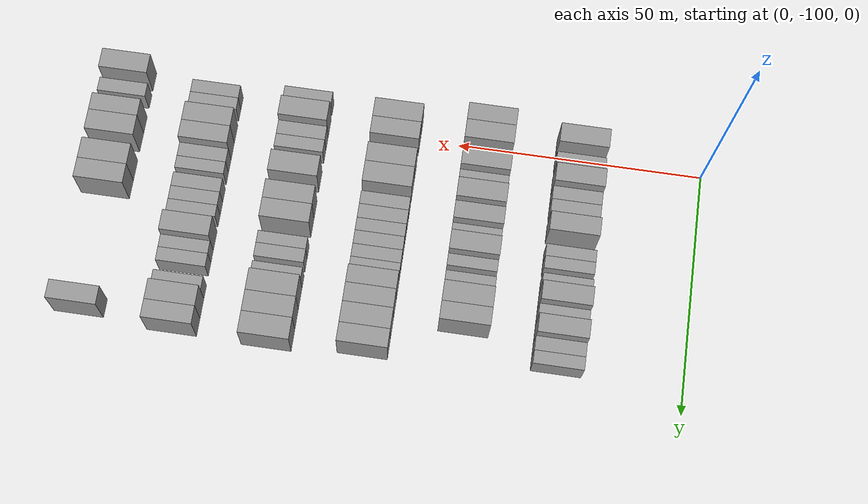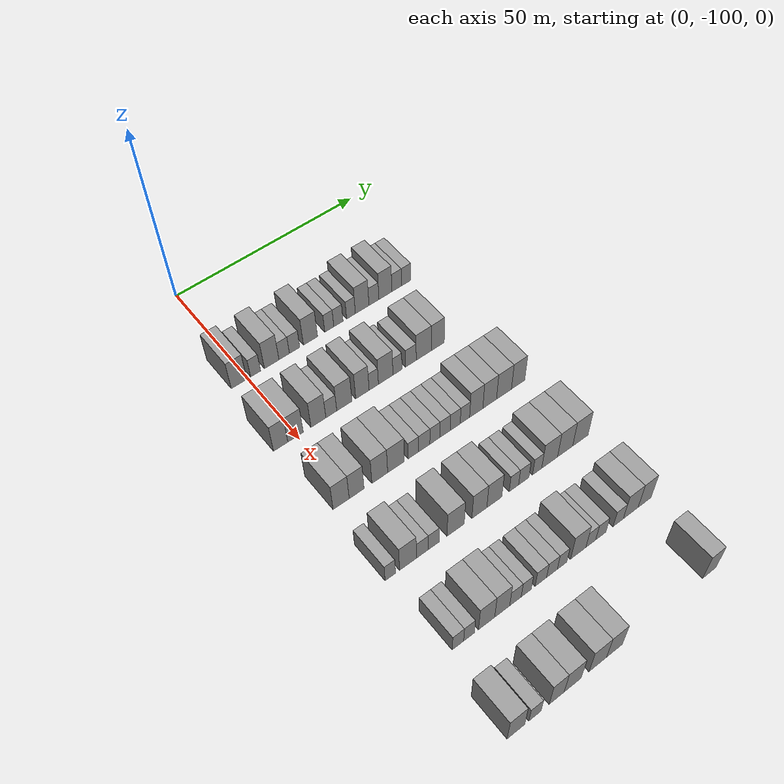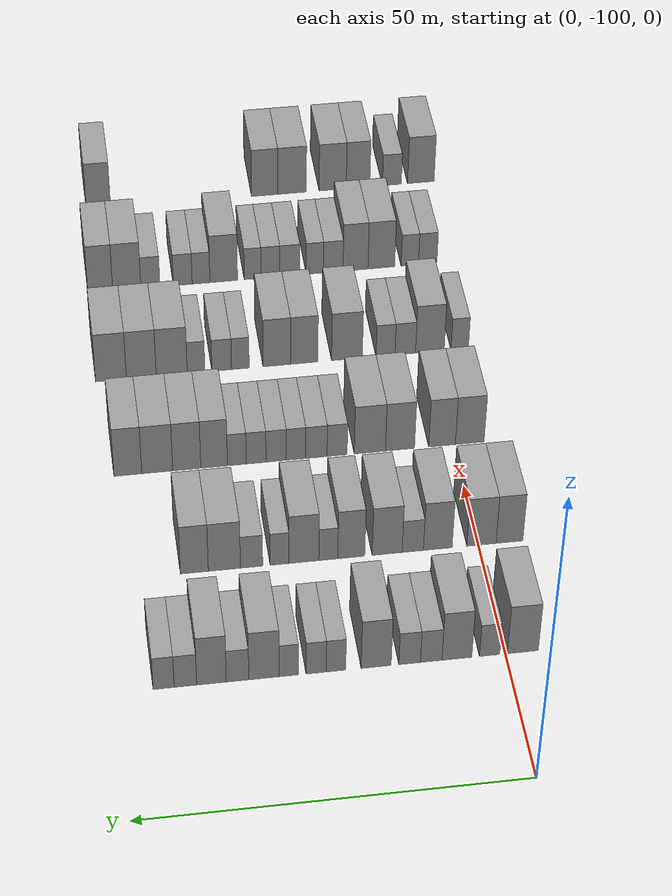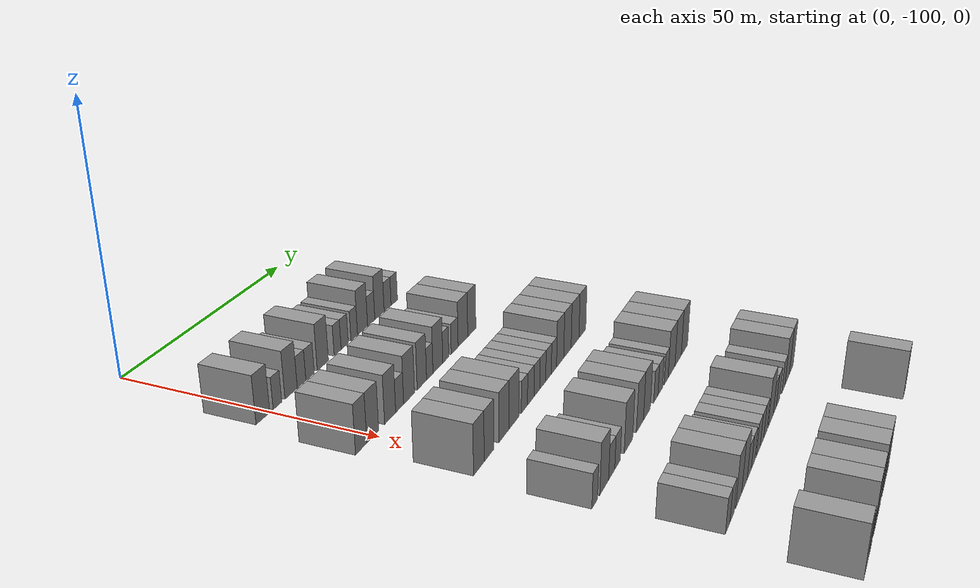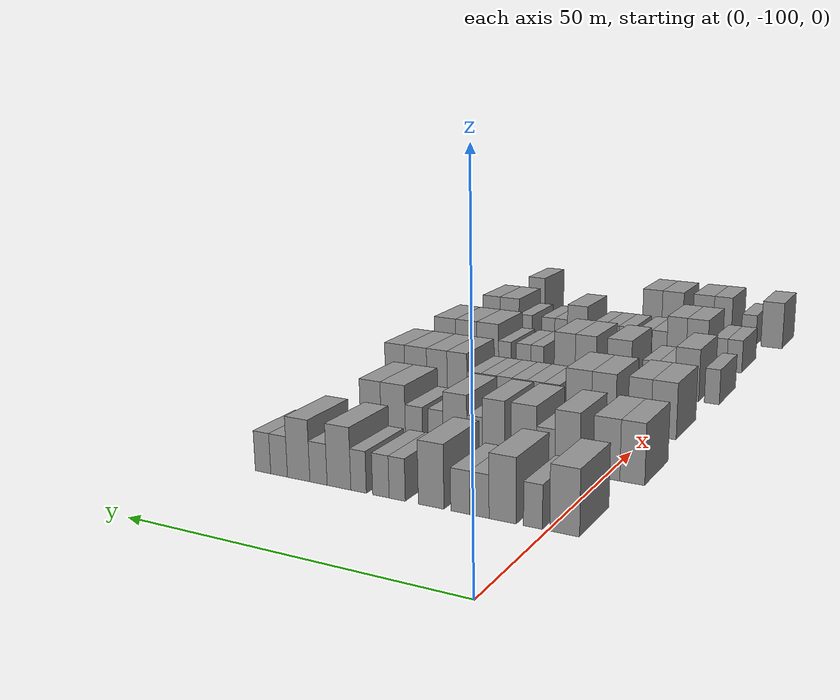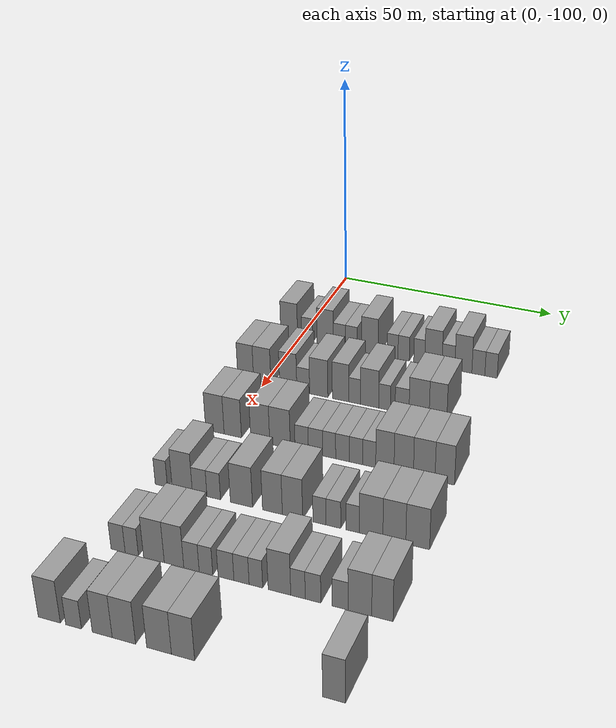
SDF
<sdf version="1.6">
 <world name="default">
  <model name="building_62">
   <static>1</static>
   <pose>25.0000 -102.2324 0 0.000000 0.000000 0.000000</pose>
   <link name="link">
    <pose>0 0 4.50 0 0 0</pose>
    <collision name="collision"><geometry><box><size>10.0000 4.0327 9.0000</size></box></geometry></collision>
    <visual name="visual">
     <cast_shadows>0</cast_shadows>
     <geometry><box><size>10.0000 4.0327 9.0000</size></box></geometry>
     <material>
      <script>
       <uri>model://grey_wall/materials/scripts</uri>
       <uri>model://grey_wall/materials/textures</uri>
       <name>vrc/grey_wall</name>
      </script>
     </material>
    </visual>
   </link>
  </model>
  <model name="building_63">
   <static>1</static>
   <pose>25.0000 -97.9014 0 0.000000 0.000000 0.000000</pose>
   <link name="link">
    <pose>0 0 3.00 0 0 0</pose>
    <collision name="collision"><geometry><box><size>10.0000 2.6293 6.0000</size></box></geometry></collision>
    <visual name="visual">
     <cast_shadows>0</cast_shadows>
     <geometry><box><size>10.0000 2.6293 6.0000</size></box></geometry>
     <material>
      <script>
       <uri>model://grey_wall/materials/scripts</uri>
       <uri>model://grey_wall/materials/textures</uri>
       <name>vrc/grey_wall</name>
      </script>
     </material>
    </visual>
   </link>
  </model>
  <model name="building_64">
   <static>1</static>
   <pose>25.0000 -93.6507 0 0.000000 0.000000 0.000000</pose>
   <link name="link">
    <pose>0 0 4.50 0 0 0</pose>
    <collision name="collision"><geometry><box><size>10.0000 3.8720 9.0000</size></box></geometry></collision>
    <visual name="visual">
     <cast_shadows>0</cast_shadows>
     <geometry><box><size>10.0000 3.8720 9.0000</size></box></geometry>
     <material>
      <script>
       <uri>model://grey_wall/materials/scripts</uri>
       <uri>model://grey_wall/materials/textures</uri>
       <name>vrc/grey_wall</name>
      </script>
     </material>
    </visual>
   </link>
  </model>
  <model name="building_65">
   <static>1</static>
   <pose>25.0000 -90.3148 0 0.000000 0.000000 0.000000</pose>
   <link name="link">
    <pose>0 0 3.00 0 0 0</pose>
    <collision name="collision"><geometry><box><size>10.0000 2.7999 6.0000</size></box></geometry></collision>
    <visual name="visual">
     <cast_shadows>0</cast_shadows>
     <geometry><box><size>10.0000 2.7999 6.0000</size></box></geometry>
     <material>
      <script>
       <uri>model://grey_wall/materials/scripts</uri>
       <uri>model://grey_wall/materials/textures</uri>
       <name>vrc/grey_wall</name>
      </script>
     </material>
    </visual>
   </link>
  </model>
  <model name="building_66">
   <static>1</static>
   <pose>25.0000 -87.5219 0 0.000000 0.000000 0.000000</pose>
   <link name="link">
    <pose>0 0 3.00 0 0 0</pose>
    <collision name="collision"><geometry><box><size>10.0000 2.7858 6.0000</size></box></geometry></collision>
    <visual name="visual">
     <cast_shadows>0</cast_shadows>
     <geometry><box><size>10.0000 2.7858 6.0000</size></box></geometry>
     <material>
      <script>
       <uri>model://grey_wall/materials/scripts</uri>
       <uri>model://grey_wall/materials/textures</uri>
       <name>vrc/grey_wall</name>
      </script>
     </material>
    </visual>
   </link>
  </model>
  <model name="building_67">
   <static>1</static>
   <pose>25.0000 -83.1992 0 0.000000 0.000000 0.000000</pose>
   <link name="link">
    <pose>0 0 4.50 0 0 0</pose>
    <collision name="collision"><geometry><box><size>10.0000 3.8596 9.0000</size></box></geometry></collision>
    <visual name="visual">
     <cast_shadows>0</cast_shadows>
     <geometry><box><size>10.0000 3.8596 9.0000</size></box></geometry>
     <material>
      <script>
       <uri>model://grey_wall/materials/scripts</uri>
       <uri>model://grey_wall/materials/textures</uri>
       <name>vrc/grey_wall</name>
      </script>
     </material>
    </visual>
   </link>
  </model>
  <model name="building_68">
   <static>1</static>
   <pose>25.0000 -78.0165 0 0.000000 0.000000 0.000000</pose>
   <link name="link">
    <pose>0 0 3.00 0 0 0</pose>
    <collision name="collision"><geometry><box><size>10.0000 2.5059 6.0000</size></box></geometry></collision>
    <visual name="visual">
     <cast_shadows>0</cast_shadows>
     <geometry><box><size>10.0000 2.5059 6.0000</size></box></geometry>
     <material>
      <script>
       <uri>model://grey_wall/materials/scripts</uri>
       <uri>model://grey_wall/materials/textures</uri>
       <name>vrc/grey_wall</name>
      </script>
     </material>
    </visual>
   </link>
  </model>
  <model name="building_69">
   <static>1</static>
   <pose>25.0000 -75.4700 0 0.000000 0.000000 0.000000</pose>
   <link name="link">
    <pose>0 0 3.00 0 0 0</pose>
    <collision name="collision"><geometry><box><size>10.0000 2.5871 6.0000</size></box></geometry></collision>
    <visual name="visual">
     <cast_shadows>0</cast_shadows>
     <geometry><box><size>10.0000 2.5871 6.0000</size></box></geometry>
     <material>
      <script>
       <uri>model://grey_wall/materials/scripts</uri>
       <uri>model://grey_wall/materials/textures</uri>
       <name>vrc/grey_wall</name>
      </script>
     </material>
    </visual>
   </link>
  </model>
  <model name="building_70">
   <static>1</static>
   <pose>25.0000 -71.9398 0 0.000000 0.000000 0.000000</pose>
   <link name="link">
    <pose>0 0 3.00 0 0 0</pose>
    <collision name="collision"><geometry><box><size>10.0000 2.4733 6.0000</size></box></geometry></collision>
    <visual name="visual">
     <cast_shadows>0</cast_shadows>
     <geometry><box><size>10.0000 2.4733 6.0000</size></box></geometry>
     <material>
      <script>
       <uri>model://grey_wall/materials/scripts</uri>
       <uri>model://grey_wall/materials/textures</uri>
       <name>vrc/grey_wall</name>
      </script>
     </material>
    </visual>
   </link>
  </model>
  <model name="building_71">
   <static>1</static>
   <pose>25.0000 -68.7679 0 0.000000 0.000000 0.000000</pose>
   <link name="link">
    <pose>0 0 4.50 0 0 0</pose>
    <collision name="collision"><geometry><box><size>10.0000 3.8706 9.0000</size></box></geometry></collision>
    <visual name="visual">
     <cast_shadows>0</cast_shadows>
     <geometry><box><size>10.0000 3.8706 9.0000</size></box></geometry>
     <material>
      <script>
       <uri>model://grey_wall/materials/scripts</uri>
       <uri>model://grey_wall/materials/textures</uri>
       <name>vrc/grey_wall</name>
      </script>
     </material>
    </visual>
   </link>
  </model>
  <model name="building_72">
   <static>1</static>
   <pose>25.0000 -65.4041 0 0.000000 0.000000 0.000000</pose>
   <link name="link">
    <pose>0 0 3.00 0 0 0</pose>
    <collision name="collision"><geometry><box><size>10.0000 2.8571 6.0000</size></box></geometry></collision>
    <visual name="visual">
     <cast_shadows>0</cast_shadows>
     <geometry><box><size>10.0000 2.8571 6.0000</size></box></geometry>
     <material>
      <script>
       <uri>model://grey_wall/materials/scripts</uri>
       <uri>model://grey_wall/materials/textures</uri>
       <name>vrc/grey_wall</name>
      </script>
     </material>
    </visual>
   </link>
  </model>
  <model name="building_73">
   <static>1</static>
   <pose>25.0000 -62.0879 0 0.000000 0.000000 0.000000</pose>
   <link name="link">
    <pose>0 0 4.50 0 0 0</pose>
    <collision name="collision"><geometry><box><size>10.0000 3.7752 9.0000</size></box></geometry></collision>
    <visual name="visual">
     <cast_shadows>0</cast_shadows>
     <geometry><box><size>10.0000 3.7752 9.0000</size></box></geometry>
     <material>
      <script>
       <uri>model://grey_wall/materials/scripts</uri>
       <uri>model://grey_wall/materials/textures</uri>
       <name>vrc/grey_wall</name>
      </script>
     </material>
    </visual>
   </link>
  </model>
  <model name="building_74">
   <static>1</static>
   <pose>25.0000 -58.7655 0 0.000000 0.000000 0.000000</pose>
   <link name="link">
    <pose>0 0 3.00 0 0 0</pose>
    <collision name="collision"><geometry><box><size>10.0000 2.8698 6.0000</size></box></geometry></collision>
    <visual name="visual">
     <cast_shadows>0</cast_shadows>
     <geometry><box><size>10.0000 2.8698 6.0000</size></box></geometry>
     <material>
      <script>
       <uri>model://grey_wall/materials/scripts</uri>
       <uri>model://grey_wall/materials/textures</uri>
       <name>vrc/grey_wall</name>
      </script>
     </material>
    </visual>
   </link>
  </model>
  <model name="building_75">
   <static>1</static>
   <pose>25.0000 -55.9887 0 0.000000 0.000000 0.000000</pose>
   <link name="link">
    <pose>0 0 3.00 0 0 0</pose>
    <collision name="collision"><geometry><box><size>10.0000 2.6839 6.0000</size></box></geometry></collision>
    <visual name="visual">
     <cast_shadows>0</cast_shadows>
     <geometry><box><size>10.0000 2.6839 6.0000</size></box></geometry>
     <material>
      <script>
       <uri>model://grey_wall/materials/scripts</uri>
       <uri>model://grey_wall/materials/textures</uri>
       <name>vrc/grey_wall</name>
      </script>
     </material>
    </visual>
   </link>
  </model>
  <model name="building_237">
   <static>1</static>
   <pose>44.0000 -104.1863 0 0.000000 0.000000 0.000000</pose>
   <link name="link">
    <pose>0 0 4.50 0 0 0</pose>
    <collision name="collision"><geometry><box><size>10.0000 3.6390 9.0000</size></box></geometry></collision>
    <visual name="visual">
     <cast_shadows>0</cast_shadows>
     <geometry><box><size>10.0000 3.6390 9.0000</size></box></geometry>
     <material>
      <script>
       <uri>model://grey_wall/materials/scripts</uri>
       <uri>model://grey_wall/materials/textures</uri>
       <name>vrc/grey_wall</name>
      </script>
     </material>
    </visual>
   </link>
  </model>
  <model name="building_238">
   <static>1</static>
   <pose>44.0000 -100.3895 0 0.000000 0.000000 0.000000</pose>
   <link name="link">
    <pose>0 0 4.50 0 0 0</pose>
    <collision name="collision"><geometry><box><size>10.0000 3.9548 9.0000</size></box></geometry></collision>
    <visual name="visual">
     <cast_shadows>0</cast_shadows>
     <geometry><box><size>10.0000 3.9548 9.0000</size></box></geometry>
     <material>
      <script>
       <uri>model://grey_wall/materials/scripts</uri>
       <uri>model://grey_wall/materials/textures</uri>
       <name>vrc/grey_wall</name>
      </script>
     </material>
    </visual>
   </link>
  </model>
  <model name="building_239">
   <static>1</static>
   <pose>44.0000 -94.4741 0 0.000000 0.000000 0.000000</pose>
   <link name="link">
    <pose>0 0 4.50 0 0 0</pose>
    <collision name="collision"><geometry><box><size>10.0000 3.8760 9.0000</size></box></geometry></collision>
    <visual name="visual">
     <cast_shadows>0</cast_shadows>
     <geometry><box><size>10.0000 3.8760 9.0000</size></box></geometry>
     <material>
      <script>
       <uri>model://grey_wall/materials/scripts</uri>
       <uri>model://grey_wall/materials/textures</uri>
       <name>vrc/grey_wall</name>
      </script>
     </material>
    </visual>
   </link>
  </model>
  <model name="building_240">
   <static>1</static>
   <pose>44.0000 -91.0992 0 0.000000 0.000000 0.000000</pose>
   <link name="link">
    <pose>0 0 3.00 0 0 0</pose>
    <collision name="collision"><geometry><box><size>10.0000 2.8737 6.0000</size></box></geometry></collision>
    <visual name="visual">
     <cast_shadows>0</cast_shadows>
     <geometry><box><size>10.0000 2.8737 6.0000</size></box></geometry>
     <material>
      <script>
       <uri>model://grey_wall/materials/scripts</uri>
       <uri>model://grey_wall/materials/textures</uri>
       <name>vrc/grey_wall</name>
      </script>
     </material>
    </visual>
   </link>
  </model>
  <model name="building_241">
   <static>1</static>
   <pose>44.0000 -87.6434 0 0.000000 0.000000 0.000000</pose>
   <link name="link">
    <pose>0 0 4.50 0 0 0</pose>
    <collision name="collision"><geometry><box><size>10.0000 4.0379 9.0000</size></box></geometry></collision>
    <visual name="visual">
     <cast_shadows>0</cast_shadows>
     <geometry><box><size>10.0000 4.0379 9.0000</size></box></geometry>
     <material>
      <script>
       <uri>model://grey_wall/materials/scripts</uri>
       <uri>model://grey_wall/materials/textures</uri>
       <name>vrc/grey_wall</name>
      </script>
     </material>
    </visual>
   </link>
  </model>
  <model name="building_242">
   <static>1</static>
   <pose>44.0000 -82.8118 0 0.000000 0.000000 0.000000</pose>
   <link name="link">
    <pose>0 0 4.50 0 0 0</pose>
    <collision name="collision"><geometry><box><size>10.0000 3.6252 9.0000</size></box></geometry></collision>
    <visual name="visual">
     <cast_shadows>0</cast_shadows>
     <geometry><box><size>10.0000 3.6252 9.0000</size></box></geometry>
     <material>
      <script>
       <uri>model://grey_wall/materials/scripts</uri>
       <uri>model://grey_wall/materials/textures</uri>
       <name>vrc/grey_wall</name>
      </script>
     </material>
    </visual>
   </link>
  </model>
  <model name="building_243">
   <static>1</static>
   <pose>44.0000 -79.7321 0 0.000000 0.000000 0.000000</pose>
   <link name="link">
    <pose>0 0 3.00 0 0 0</pose>
    <collision name="collision"><geometry><box><size>10.0000 2.5342 6.0000</size></box></geometry></collision>
    <visual name="visual">
     <cast_shadows>0</cast_shadows>
     <geometry><box><size>10.0000 2.5342 6.0000</size></box></geometry>
     <material>
      <script>
       <uri>model://grey_wall/materials/scripts</uri>
       <uri>model://grey_wall/materials/textures</uri>
       <name>vrc/grey_wall</name>
      </script>
     </material>
    </visual>
   </link>
  </model>
  <model name="building_244">
   <static>1</static>
   <pose>44.0000 -76.4653 0 0.000000 0.000000 0.000000</pose>
   <link name="link">
    <pose>0 0 4.50 0 0 0</pose>
    <collision name="collision"><geometry><box><size>10.0000 3.9995 9.0000</size></box></geometry></collision>
    <visual name="visual">
     <cast_shadows>0</cast_shadows>
     <geometry><box><size>10.0000 3.9995 9.0000</size></box></geometry>
     <material>
      <script>
       <uri>model://grey_wall/materials/scripts</uri>
       <uri>model://grey_wall/materials/textures</uri>
       <name>vrc/grey_wall</name>
      </script>
     </material>
    </visual>
   </link>
  </model>
  <model name="building_245">
   <static>1</static>
   <pose>44.0000 -73.2101 0 0.000000 0.000000 0.000000</pose>
   <link name="link">
    <pose>0 0 3.00 0 0 0</pose>
    <collision name="collision"><geometry><box><size>10.0000 2.5110 6.0000</size></box></geometry></collision>
    <visual name="visual">
     <cast_shadows>0</cast_shadows>
     <geometry><box><size>10.0000 2.5110 6.0000</size></box></geometry>
     <material>
      <script>
       <uri>model://grey_wall/materials/scripts</uri>
       <uri>model://grey_wall/materials/textures</uri>
       <name>vrc/grey_wall</name>
      </script>
     </material>
    </visual>
   </link>
  </model>
  <model name="building_246">
   <static>1</static>
   <pose>44.0000 -69.4684 0 0.000000 0.000000 0.000000</pose>
   <link name="link">
    <pose>0 0 3.00 0 0 0</pose>
    <collision name="collision"><geometry><box><size>10.0000 2.9724 6.0000</size></box></geometry></collision>
    <visual name="visual">
     <cast_shadows>0</cast_shadows>
     <geometry><box><size>10.0000 2.9724 6.0000</size></box></geometry>
     <material>
      <script>
       <uri>model://grey_wall/materials/scripts</uri>
       <uri>model://grey_wall/materials/textures</uri>
       <name>vrc/grey_wall</name>
      </script>
     </material>
    </visual>
   </link>
  </model>
  <model name="building_247">
   <static>1</static>
   <pose>44.0000 -65.8540 0 0.000000 0.000000 0.000000</pose>
   <link name="link">
    <pose>0 0 4.50 0 0 0</pose>
    <collision name="collision"><geometry><box><size>10.0000 4.2565 9.0000</size></box></geometry></collision>
    <visual name="visual">
     <cast_shadows>0</cast_shadows>
     <geometry><box><size>10.0000 4.2565 9.0000</size></box></geometry>
     <material>
      <script>
       <uri>model://grey_wall/materials/scripts</uri>
       <uri>model://grey_wall/materials/textures</uri>
       <name>vrc/grey_wall</name>
      </script>
     </material>
    </visual>
   </link>
  </model>
  <model name="building_248">
   <static>1</static>
   <pose>44.0000 -61.8685 0 0.000000 0.000000 0.000000</pose>
   <link name="link">
    <pose>0 0 4.50 0 0 0</pose>
    <collision name="collision"><geometry><box><size>10.0000 3.7145 9.0000</size></box></geometry></collision>
    <visual name="visual">
     <cast_shadows>0</cast_shadows>
     <geometry><box><size>10.0000 3.7145 9.0000</size></box></geometry>
     <material>
      <script>
       <uri>model://grey_wall/materials/scripts</uri>
       <uri>model://grey_wall/materials/textures</uri>
       <name>vrc/grey_wall</name>
      </script>
     </material>
    </visual>
   </link>
  </model>
  <model name="building_414">
   <static>1</static>
   <pose>63.0000 -102.2850 0 0.000000 0.000000 0.000000</pose>
   <link name="link">
    <pose>0 0 4.50 0 0 0</pose>
    <collision name="collision"><geometry><box><size>10.0000 4.0436 9.0000</size></box></geometry></collision>
    <visual name="visual">
     <cast_shadows>0</cast_shadows>
     <geometry><box><size>10.0000 4.0436 9.0000</size></box></geometry>
     <material>
      <script>
       <uri>model://grey_wall/materials/scripts</uri>
       <uri>model://grey_wall/materials/textures</uri>
       <name>vrc/grey_wall</name>
      </script>
     </material>
    </visual>
   </link>
  </model>
  <model name="building_415">
   <static>1</static>
   <pose>63.0000 -98.3821 0 0.000000 0.000000 0.000000</pose>
   <link name="link">
    <pose>0 0 4.50 0 0 0</pose>
    <collision name="collision"><geometry><box><size>10.0000 3.7623 9.0000</size></box></geometry></collision>
    <visual name="visual">
     <cast_shadows>0</cast_shadows>
     <geometry><box><size>10.0000 3.7623 9.0000</size></box></geometry>
     <material>
      <script>
       <uri>model://grey_wall/materials/scripts</uri>
       <uri>model://grey_wall/materials/textures</uri>
       <name>vrc/grey_wall</name>
      </script>
     </material>
    </visual>
   </link>
  </model>
  <model name="building_416">
   <static>1</static>
   <pose>63.0000 -92.4648 0 0.000000 0.000000 0.000000</pose>
   <link name="link">
    <pose>0 0 4.50 0 0 0</pose>
    <collision name="collision"><geometry><box><size>10.0000 4.0722 9.0000</size></box></geometry></collision>
    <visual name="visual">
     <cast_shadows>0</cast_shadows>
     <geometry><box><size>10.0000 4.0722 9.0000</size></box></geometry>
     <material>
      <script>
       <uri>model://grey_wall/materials/scripts</uri>
       <uri>model://grey_wall/materials/textures</uri>
       <name>vrc/grey_wall</name>
      </script>
     </material>
    </visual>
   </link>
  </model>
  <model name="building_417">
   <static>1</static>
   <pose>63.0000 -88.2416 0 0.000000 0.000000 0.000000</pose>
   <link name="link">
    <pose>0 0 4.50 0 0 0</pose>
    <collision name="collision"><geometry><box><size>10.0000 4.3742 9.0000</size></box></geometry></collision>
    <visual name="visual">
     <cast_shadows>0</cast_shadows>
     <geometry><box><size>10.0000 4.3742 9.0000</size></box></geometry>
     <material>
      <script>
       <uri>model://grey_wall/materials/scripts</uri>
       <uri>model://grey_wall/materials/textures</uri>
       <name>vrc/grey_wall</name>
      </script>
     </material>
    </visual>
   </link>
  </model>
  <model name="building_418">
   <static>1</static>
   <pose>63.0000 -83.6569 0 0.000000 0.000000 0.000000</pose>
   <link name="link">
    <pose>0 0 3.00 0 0 0</pose>
    <collision name="collision"><geometry><box><size>10.0000 2.7954 6.0000</size></box></geometry></collision>
    <visual name="visual">
     <cast_shadows>0</cast_shadows>
     <geometry><box><size>10.0000 2.7954 6.0000</size></box></geometry>
     <material>
      <script>
       <uri>model://grey_wall/materials/scripts</uri>
       <uri>model://grey_wall/materials/textures</uri>
       <name>vrc/grey_wall</name>
      </script>
     </material>
    </visual>
   </link>
  </model>
  <model name="building_419">
   <static>1</static>
   <pose>63.0000 -80.7693 0 0.000000 0.000000 0.000000</pose>
   <link name="link">
    <pose>0 0 3.00 0 0 0</pose>
    <collision name="collision"><geometry><box><size>10.0000 2.9796 6.0000</size></box></geometry></collision>
    <visual name="visual">
     <cast_shadows>0</cast_shadows>
     <geometry><box><size>10.0000 2.9796 6.0000</size></box></geometry>
     <material>
      <script>
       <uri>model://grey_wall/materials/scripts</uri>
       <uri>model://grey_wall/materials/textures</uri>
       <name>vrc/grey_wall</name>
      </script>
     </material>
    </visual>
   </link>
  </model>
  <model name="building_420">
   <static>1</static>
   <pose>63.0000 -77.9347 0 0.000000 0.000000 0.000000</pose>
   <link name="link">
    <pose>0 0 3.00 0 0 0</pose>
    <collision name="collision"><geometry><box><size>10.0000 2.6896 6.0000</size></box></geometry></collision>
    <visual name="visual">
     <cast_shadows>0</cast_shadows>
     <geometry><box><size>10.0000 2.6896 6.0000</size></box></geometry>
     <material>
      <script>
       <uri>model://grey_wall/materials/scripts</uri>
       <uri>model://grey_wall/materials/textures</uri>
       <name>vrc/grey_wall</name>
      </script>
     </material>
    </visual>
   </link>
  </model>
  <model name="building_421">
   <static>1</static>
   <pose>63.0000 -75.1729 0 0.000000 0.000000 0.000000</pose>
   <link name="link">
    <pose>0 0 3.00 0 0 0</pose>
    <collision name="collision"><geometry><box><size>10.0000 2.8342 6.0000</size></box></geometry></collision>
    <visual name="visual">
     <cast_shadows>0</cast_shadows>
     <geometry><box><size>10.0000 2.8342 6.0000</size></box></geometry>
     <material>
      <script>
       <uri>model://grey_wall/materials/scripts</uri>
       <uri>model://grey_wall/materials/textures</uri>
       <name>vrc/grey_wall</name>
      </script>
     </material>
    </visual>
   </link>
  </model>
  <model name="building_422">
   <static>1</static>
   <pose>63.0000 -72.3834 0 0.000000 0.000000 0.000000</pose>
   <link name="link">
    <pose>0 0 3.00 0 0 0</pose>
    <collision name="collision"><geometry><box><size>10.0000 2.7446 6.0000</size></box></geometry></collision>
    <visual name="visual">
     <cast_shadows>0</cast_shadows>
     <geometry><box><size>10.0000 2.7446 6.0000</size></box></geometry>
     <material>
      <script>
       <uri>model://grey_wall/materials/scripts</uri>
       <uri>model://grey_wall/materials/textures</uri>
       <name>vrc/grey_wall</name>
      </script>
     </material>
    </visual>
   </link>
  </model>
  <model name="building_423">
   <static>1</static>
   <pose>63.0000 -69.7087 0 0.000000 0.000000 0.000000</pose>
   <link name="link">
    <pose>0 0 3.00 0 0 0</pose>
    <collision name="collision"><geometry><box><size>10.0000 2.6048 6.0000</size></box></geometry></collision>
    <visual name="visual">
     <cast_shadows>0</cast_shadows>
     <geometry><box><size>10.0000 2.6048 6.0000</size></box></geometry>
     <material>
      <script>
       <uri>model://grey_wall/materials/scripts</uri>
       <uri>model://grey_wall/materials/textures</uri>
       <name>vrc/grey_wall</name>
      </script>
     </material>
    </visual>
   </link>
  </model>
  <model name="building_424">
   <static>1</static>
   <pose>63.0000 -66.5610 0 0.000000 0.000000 0.000000</pose>
   <link name="link">
    <pose>0 0 4.50 0 0 0</pose>
    <collision name="collision"><geometry><box><size>10.0000 3.6906 9.0000</size></box></geometry></collision>
    <visual name="visual">
     <cast_shadows>0</cast_shadows>
     <geometry><box><size>10.0000 3.6906 9.0000</size></box></geometry>
     <material>
      <script>
       <uri>model://grey_wall/materials/scripts</uri>
       <uri>model://grey_wall/materials/textures</uri>
       <name>vrc/grey_wall</name>
      </script>
     </material>
    </visual>
   </link>
  </model>
  <model name="building_425">
   <static>1</static>
   <pose>63.0000 -62.7786 0 0.000000 0.000000 0.000000</pose>
   <link name="link">
    <pose>0 0 4.50 0 0 0</pose>
    <collision name="collision"><geometry><box><size>10.0000 3.8744 9.0000</size></box></geometry></collision>
    <visual name="visual">
     <cast_shadows>0</cast_shadows>
     <geometry><box><size>10.0000 3.8744 9.0000</size></box></geometry>
     <material>
      <script>
       <uri>model://grey_wall/materials/scripts</uri>
       <uri>model://grey_wall/materials/textures</uri>
       <name>vrc/grey_wall</name>
      </script>
     </material>
    </visual>
   </link>
  </model>
  <model name="building_426">
   <static>1</static>
   <pose>63.0000 -58.7108 0 0.000000 0.000000 0.000000</pose>
   <link name="link">
    <pose>0 0 4.50 0 0 0</pose>
    <collision name="collision"><geometry><box><size>10.0000 4.2612 9.0000</size></box></geometry></collision>
    <visual name="visual">
     <cast_shadows>0</cast_shadows>
     <geometry><box><size>10.0000 4.2612 9.0000</size></box></geometry>
     <material>
      <script>
       <uri>model://grey_wall/materials/scripts</uri>
       <uri>model://grey_wall/materials/textures</uri>
       <name>vrc/grey_wall</name>
      </script>
     </material>
    </visual>
   </link>
  </model>
  <model name="building_427">
   <static>1</static>
   <pose>63.0000 -54.6644 0 0.000000 0.000000 0.000000</pose>
   <link name="link">
    <pose>0 0 4.50 0 0 0</pose>
    <collision name="collision"><geometry><box><size>10.0000 3.8317 9.0000</size></box></geometry></collision>
    <visual name="visual">
     <cast_shadows>0</cast_shadows>
     <geometry><box><size>10.0000 3.8317 9.0000</size></box></geometry>
     <material>
      <script>
       <uri>model://grey_wall/materials/scripts</uri>
       <uri>model://grey_wall/materials/textures</uri>
       <name>vrc/grey_wall</name>
      </script>
     </material>
    </visual>
   </link>
  </model>
  <model name="building_588">
   <static>1</static>
   <pose>82.0000 -104.2826 0 0.000000 0.000000 0.000000</pose>
   <link name="link">
    <pose>0 0 3.00 0 0 0</pose>
    <collision name="collision"><geometry><box><size>10.0000 2.5525 6.0000</size></box></geometry></collision>
    <visual name="visual">
     <cast_shadows>0</cast_shadows>
     <geometry><box><size>10.0000 2.5525 6.0000</size></box></geometry>
     <material>
      <script>
       <uri>model://grey_wall/materials/scripts</uri>
       <uri>model://grey_wall/materials/textures</uri>
       <name>vrc/grey_wall</name>
      </script>
     </material>
    </visual>
   </link>
  </model>
  <model name="building_589">
   <static>1</static>
   <pose>82.0000 -99.9147 0 0.000000 0.000000 0.000000</pose>
   <link name="link">
    <pose>0 0 4.50 0 0 0</pose>
    <collision name="collision"><geometry><box><size>10.0000 4.1833 9.0000</size></box></geometry></collision>
    <visual name="visual">
     <cast_shadows>0</cast_shadows>
     <geometry><box><size>10.0000 4.1833 9.0000</size></box></geometry>
     <material>
      <script>
       <uri>model://grey_wall/materials/scripts</uri>
       <uri>model://grey_wall/materials/textures</uri>
       <name>vrc/grey_wall</name>
      </script>
     </material>
    </visual>
   </link>
  </model>
  <model name="building_590">
   <static>1</static>
   <pose>82.0000 -96.3266 0 0.000000 0.000000 0.000000</pose>
   <link name="link">
    <pose>0 0 3.00 0 0 0</pose>
    <collision name="collision"><geometry><box><size>10.0000 2.9930 6.0000</size></box></geometry></collision>
    <visual name="visual">
     <cast_shadows>0</cast_shadows>
     <geometry><box><size>10.0000 2.9930 6.0000</size></box></geometry>
     <material>
      <script>
       <uri>model://grey_wall/materials/scripts</uri>
       <uri>model://grey_wall/materials/textures</uri>
       <name>vrc/grey_wall</name>
      </script>
     </material>
    </visual>
   </link>
  </model>
  <model name="building_591">
   <static>1</static>
   <pose>82.0000 -93.4463 0 0.000000 0.000000 0.000000</pose>
   <link name="link">
    <pose>0 0 3.00 0 0 0</pose>
    <collision name="collision"><geometry><box><size>10.0000 2.7678 6.0000</size></box></geometry></collision>
    <visual name="visual">
     <cast_shadows>0</cast_shadows>
     <geometry><box><size>10.0000 2.7678 6.0000</size></box></geometry>
     <material>
      <script>
       <uri>model://grey_wall/materials/scripts</uri>
       <uri>model://grey_wall/materials/textures</uri>
       <name>vrc/grey_wall</name>
      </script>
     </material>
    </visual>
   </link>
  </model>
  <model name="building_592">
   <static>1</static>
   <pose>82.0000 -87.8330 0 0.000000 0.000000 0.000000</pose>
   <link name="link">
    <pose>0 0 4.50 0 0 0</pose>
    <collision name="collision"><geometry><box><size>10.0000 4.4586 9.0000</size></box></geometry></collision>
    <visual name="visual">
     <cast_shadows>0</cast_shadows>
     <geometry><box><size>10.0000 4.4586 9.0000</size></box></geometry>
     <material>
      <script>
       <uri>model://grey_wall/materials/scripts</uri>
       <uri>model://grey_wall/materials/textures</uri>
       <name>vrc/grey_wall</name>
      </script>
     </material>
    </visual>
   </link>
  </model>
  <model name="building_593">
   <static>1</static>
   <pose>82.0000 -81.6382 0 0.000000 0.000000 0.000000</pose>
   <link name="link">
    <pose>0 0 4.50 0 0 0</pose>
    <collision name="collision"><geometry><box><size>10.0000 3.9311 9.0000</size></box></geometry></collision>
    <visual name="visual">
     <cast_shadows>0</cast_shadows>
     <geometry><box><size>10.0000 3.9311 9.0000</size></box></geometry>
     <material>
      <script>
       <uri>model://grey_wall/materials/scripts</uri>
       <uri>model://grey_wall/materials/textures</uri>
       <name>vrc/grey_wall</name>
      </script>
     </material>
    </visual>
   </link>
  </model>
  <model name="building_594">
   <static>1</static>
   <pose>82.0000 -77.6781 0 0.000000 0.000000 0.000000</pose>
   <link name="link">
    <pose>0 0 4.50 0 0 0</pose>
    <collision name="collision"><geometry><box><size>10.0000 3.9890 9.0000</size></box></geometry></collision>
    <visual name="visual">
     <cast_shadows>0</cast_shadows>
     <geometry><box><size>10.0000 3.9890 9.0000</size></box></geometry>
     <material>
      <script>
       <uri>model://grey_wall/materials/scripts</uri>
       <uri>model://grey_wall/materials/textures</uri>
       <name>vrc/grey_wall</name>
      </script>
     </material>
    </visual>
   </link>
  </model>
  <model name="building_595">
   <static>1</static>
   <pose>82.0000 -72.4162 0 0.000000 0.000000 0.000000</pose>
   <link name="link">
    <pose>0 0 3.00 0 0 0</pose>
    <collision name="collision"><geometry><box><size>10.0000 2.5348 6.0000</size></box></geometry></collision>
    <visual name="visual">
     <cast_shadows>0</cast_shadows>
     <geometry><box><size>10.0000 2.5348 6.0000</size></box></geometry>
     <material>
      <script>
       <uri>model://grey_wall/materials/scripts</uri>
       <uri>model://grey_wall/materials/textures</uri>
       <name>vrc/grey_wall</name>
      </script>
     </material>
    </visual>
   </link>
  </model>
  <model name="building_596">
   <static>1</static>
   <pose>82.0000 -69.7311 0 0.000000 0.000000 0.000000</pose>
   <link name="link">
    <pose>0 0 3.00 0 0 0</pose>
    <collision name="collision"><geometry><box><size>10.0000 2.8354 6.0000</size></box></geometry></collision>
    <visual name="visual">
     <cast_shadows>0</cast_shadows>
     <geometry><box><size>10.0000 2.8354 6.0000</size></box></geometry>
     <material>
      <script>
       <uri>model://grey_wall/materials/scripts</uri>
       <uri>model://grey_wall/materials/textures</uri>
       <name>vrc/grey_wall</name>
      </script>
     </material>
    </visual>
   </link>
  </model>
  <model name="building_597">
   <static>1</static>
   <pose>82.0000 -66.0479 0 0.000000 0.000000 0.000000</pose>
   <link name="link">
    <pose>0 0 3.00 0 0 0</pose>
    <collision name="collision"><geometry><box><size>10.0000 2.5312 6.0000</size></box></geometry></collision>
    <visual name="visual">
     <cast_shadows>0</cast_shadows>
     <geometry><box><size>10.0000 2.5312 6.0000</size></box></geometry>
     <material>
      <script>
       <uri>model://grey_wall/materials/scripts</uri>
       <uri>model://grey_wall/materials/textures</uri>
       <name>vrc/grey_wall</name>
      </script>
     </material>
    </visual>
   </link>
  </model>
  <model name="building_598">
   <static>1</static>
   <pose>82.0000 -62.5559 0 0.000000 0.000000 0.000000</pose>
   <link name="link">
    <pose>0 0 4.50 0 0 0</pose>
    <collision name="collision"><geometry><box><size>10.0000 4.4528 9.0000</size></box></geometry></collision>
    <visual name="visual">
     <cast_shadows>0</cast_shadows>
     <geometry><box><size>10.0000 4.4528 9.0000</size></box></geometry>
     <material>
      <script>
       <uri>model://grey_wall/materials/scripts</uri>
       <uri>model://grey_wall/materials/textures</uri>
       <name>vrc/grey_wall</name>
      </script>
     </material>
    </visual>
   </link>
  </model>
  <model name="building_599">
   <static>1</static>
   <pose>82.0000 -58.1905 0 0.000000 0.000000 0.000000</pose>
   <link name="link">
    <pose>0 0 4.50 0 0 0</pose>
    <collision name="collision"><geometry><box><size>10.0000 4.2779 9.0000</size></box></geometry></collision>
    <visual name="visual">
     <cast_shadows>0</cast_shadows>
     <geometry><box><size>10.0000 4.2779 9.0000</size></box></geometry>
     <material>
      <script>
       <uri>model://grey_wall/materials/scripts</uri>
       <uri>model://grey_wall/materials/textures</uri>
       <name>vrc/grey_wall</name>
      </script>
     </material>
    </visual>
   </link>
  </model>
  <model name="building_600">
   <static>1</static>
   <pose>82.0000 -53.8504 0 0.000000 0.000000 0.000000</pose>
   <link name="link">
    <pose>0 0 4.50 0 0 0</pose>
    <collision name="collision"><geometry><box><size>10.0000 4.4025 9.0000</size></box></geometry></collision>
    <visual name="visual">
     <cast_shadows>0</cast_shadows>
     <geometry><box><size>10.0000 4.4025 9.0000</size></box></geometry>
     <material>
      <script>
       <uri>model://grey_wall/materials/scripts</uri>
       <uri>model://grey_wall/materials/textures</uri>
       <name>vrc/grey_wall</name>
      </script>
     </material>
    </visual>
   </link>
  </model>
  <model name="building_756">
   <static>1</static>
   <pose>101.0000 -102.8472 0 0.000000 0.000000 0.000000</pose>
   <link name="link">
    <pose>0 0 3.00 0 0 0</pose>
    <collision name="collision"><geometry><box><size>10.0000 2.7856 6.0000</size></box></geometry></collision>
    <visual name="visual">
     <cast_shadows>0</cast_shadows>
     <geometry><box><size>10.0000 2.7856 6.0000</size></box></geometry>
     <material>
      <script>
       <uri>model://grey_wall/materials/scripts</uri>
       <uri>model://grey_wall/materials/textures</uri>
       <name>vrc/grey_wall</name>
      </script>
     </material>
    </visual>
   </link>
  </model>
  <model name="building_757">
   <static>1</static>
   <pose>101.0000 -100.1454 0 0.000000 0.000000 0.000000</pose>
   <link name="link">
    <pose>0 0 3.00 0 0 0</pose>
    <collision name="collision"><geometry><box><size>10.0000 2.6180 6.0000</size></box></geometry></collision>
    <visual name="visual">
     <cast_shadows>0</cast_shadows>
     <geometry><box><size>10.0000 2.6180 6.0000</size></box></geometry>
     <material>
      <script>
       <uri>model://grey_wall/materials/scripts</uri>
       <uri>model://grey_wall/materials/textures</uri>
       <name>vrc/grey_wall</name>
      </script>
     </material>
    </visual>
   </link>
  </model>
  <model name="building_758">
   <static>1</static>
   <pose>101.0000 -95.8220 0 0.000000 0.000000 0.000000</pose>
   <link name="link">
    <pose>0 0 4.50 0 0 0</pose>
    <collision name="collision"><geometry><box><size>10.0000 4.0288 9.0000</size></box></geometry></collision>
    <visual name="visual">
     <cast_shadows>0</cast_shadows>
     <geometry><box><size>10.0000 4.0288 9.0000</size></box></geometry>
     <material>
      <script>
       <uri>model://grey_wall/materials/scripts</uri>
       <uri>model://grey_wall/materials/textures</uri>
       <name>vrc/grey_wall</name>
      </script>
     </material>
    </visual>
   </link>
  </model>
  <model name="building_759">
   <static>1</static>
   <pose>101.0000 -91.9284 0 0.000000 0.000000 0.000000</pose>
   <link name="link">
    <pose>0 0 4.50 0 0 0</pose>
    <collision name="collision"><geometry><box><size>10.0000 3.7583 9.0000</size></box></geometry></collision>
    <visual name="visual">
     <cast_shadows>0</cast_shadows>
     <geometry><box><size>10.0000 3.7583 9.0000</size></box></geometry>
     <material>
      <script>
       <uri>model://grey_wall/materials/scripts</uri>
       <uri>model://grey_wall/materials/textures</uri>
       <name>vrc/grey_wall</name>
      </script>
     </material>
    </visual>
   </link>
  </model>
  <model name="building_760">
   <static>1</static>
   <pose>101.0000 -88.5824 0 0.000000 0.000000 0.000000</pose>
   <link name="link">
    <pose>0 0 3.00 0 0 0</pose>
    <collision name="collision"><geometry><box><size>10.0000 2.9337 6.0000</size></box></geometry></collision>
    <visual name="visual">
     <cast_shadows>0</cast_shadows>
     <geometry><box><size>10.0000 2.9337 6.0000</size></box></geometry>
     <material>
      <script>
       <uri>model://grey_wall/materials/scripts</uri>
       <uri>model://grey_wall/materials/textures</uri>
       <name>vrc/grey_wall</name>
      </script>
     </material>
    </visual>
   </link>
  </model>
  <model name="building_761">
   <static>1</static>
   <pose>101.0000 -85.8206 0 0.000000 0.000000 0.000000</pose>
   <link name="link">
    <pose>0 0 3.00 0 0 0</pose>
    <collision name="collision"><geometry><box><size>10.0000 2.5899 6.0000</size></box></geometry></collision>
    <visual name="visual">
     <cast_shadows>0</cast_shadows>
     <geometry><box><size>10.0000 2.5899 6.0000</size></box></geometry>
     <material>
      <script>
       <uri>model://grey_wall/materials/scripts</uri>
       <uri>model://grey_wall/materials/textures</uri>
       <name>vrc/grey_wall</name>
      </script>
     </material>
    </visual>
   </link>
  </model>
  <model name="building_762">
   <static>1</static>
   <pose>101.0000 -82.0401 0 0.000000 0.000000 0.000000</pose>
   <link name="link">
    <pose>0 0 3.00 0 0 0</pose>
    <collision name="collision"><geometry><box><size>10.0000 2.9709 6.0000</size></box></geometry></collision>
    <visual name="visual">
     <cast_shadows>0</cast_shadows>
     <geometry><box><size>10.0000 2.9709 6.0000</size></box></geometry>
     <material>
      <script>
       <uri>model://grey_wall/materials/scripts</uri>
       <uri>model://grey_wall/materials/textures</uri>
       <name>vrc/grey_wall</name>
      </script>
     </material>
    </visual>
   </link>
  </model>
  <model name="building_763">
   <static>1</static>
   <pose>101.0000 -79.1414 0 0.000000 0.000000 0.000000</pose>
   <link name="link">
    <pose>0 0 3.00 0 0 0</pose>
    <collision name="collision"><geometry><box><size>10.0000 2.8266 6.0000</size></box></geometry></collision>
    <visual name="visual">
     <cast_shadows>0</cast_shadows>
     <geometry><box><size>10.0000 2.8266 6.0000</size></box></geometry>
     <material>
      <script>
       <uri>model://grey_wall/materials/scripts</uri>
       <uri>model://grey_wall/materials/textures</uri>
       <name>vrc/grey_wall</name>
      </script>
     </material>
    </visual>
   </link>
  </model>
  <model name="building_764">
   <static>1</static>
   <pose>101.0000 -76.4678 0 0.000000 0.000000 0.000000</pose>
   <link name="link">
    <pose>0 0 3.00 0 0 0</pose>
    <collision name="collision"><geometry><box><size>10.0000 2.5206 6.0000</size></box></geometry></collision>
    <visual name="visual">
     <cast_shadows>0</cast_shadows>
     <geometry><box><size>10.0000 2.5206 6.0000</size></box></geometry>
     <material>
      <script>
       <uri>model://grey_wall/materials/scripts</uri>
       <uri>model://grey_wall/materials/textures</uri>
       <name>vrc/grey_wall</name>
      </script>
     </material>
    </visual>
   </link>
  </model>
  <model name="building_765">
   <static>1</static>
   <pose>101.0000 -72.1455 0 0.000000 0.000000 0.000000</pose>
   <link name="link">
    <pose>0 0 4.50 0 0 0</pose>
    <collision name="collision"><geometry><box><size>10.0000 4.1239 9.0000</size></box></geometry></collision>
    <visual name="visual">
     <cast_shadows>0</cast_shadows>
     <geometry><box><size>10.0000 4.1239 9.0000</size></box></geometry>
     <material>
      <script>
       <uri>model://grey_wall/materials/scripts</uri>
       <uri>model://grey_wall/materials/textures</uri>
       <name>vrc/grey_wall</name>
      </script>
     </material>
    </visual>
   </link>
  </model>
  <model name="building_766">
   <static>1</static>
   <pose>101.0000 -68.7598 0 0.000000 0.000000 0.000000</pose>
   <link name="link">
    <pose>0 0 3.00 0 0 0</pose>
    <collision name="collision"><geometry><box><size>10.0000 2.6475 6.0000</size></box></geometry></collision>
    <visual name="visual">
     <cast_shadows>0</cast_shadows>
     <geometry><box><size>10.0000 2.6475 6.0000</size></box></geometry>
     <material>
      <script>
       <uri>model://grey_wall/materials/scripts</uri>
       <uri>model://grey_wall/materials/textures</uri>
       <name>vrc/grey_wall</name>
      </script>
     </material>
    </visual>
   </link>
  </model>
  <model name="building_767">
   <static>1</static>
   <pose>101.0000 -66.0366 0 0.000000 0.000000 0.000000</pose>
   <link name="link">
    <pose>0 0 3.00 0 0 0</pose>
    <collision name="collision"><geometry><box><size>10.0000 2.7990 6.0000</size></box></geometry></collision>
    <visual name="visual">
     <cast_shadows>0</cast_shadows>
     <geometry><box><size>10.0000 2.7990 6.0000</size></box></geometry>
     <material>
      <script>
       <uri>model://grey_wall/materials/scripts</uri>
       <uri>model://grey_wall/materials/textures</uri>
       <name>vrc/grey_wall</name>
      </script>
     </material>
    </visual>
   </link>
  </model>
  <model name="building_768">
   <static>1</static>
   <pose>101.0000 -61.2199 0 0.000000 0.000000 0.000000</pose>
   <link name="link">
    <pose>0 0 3.00 0 0 0</pose>
    <collision name="collision"><geometry><box><size>10.0000 2.8343 6.0000</size></box></geometry></collision>
    <visual name="visual">
     <cast_shadows>0</cast_shadows>
     <geometry><box><size>10.0000 2.8343 6.0000</size></box></geometry>
     <material>
      <script>
       <uri>model://grey_wall/materials/scripts</uri>
       <uri>model://grey_wall/materials/textures</uri>
       <name>vrc/grey_wall</name>
      </script>
     </material>
    </visual>
   </link>
  </model>
  <model name="building_769">
   <static>1</static>
   <pose>101.0000 -57.7214 0 0.000000 0.000000 0.000000</pose>
   <link name="link">
    <pose>0 0 4.50 0 0 0</pose>
    <collision name="collision"><geometry><box><size>10.0000 4.1626 9.0000</size></box></geometry></collision>
    <visual name="visual">
     <cast_shadows>0</cast_shadows>
     <geometry><box><size>10.0000 4.1626 9.0000</size></box></geometry>
     <material>
      <script>
       <uri>model://grey_wall/materials/scripts</uri>
       <uri>model://grey_wall/materials/textures</uri>
       <name>vrc/grey_wall</name>
      </script>
     </material>
    </visual>
   </link>
  </model>
  <model name="building_770">
   <static>1</static>
   <pose>101.0000 -53.7893 0 0.000000 0.000000 0.000000</pose>
   <link name="link">
    <pose>0 0 4.50 0 0 0</pose>
    <collision name="collision"><geometry><box><size>10.0000 3.7018 9.0000</size></box></geometry></collision>
    <visual name="visual">
     <cast_shadows>0</cast_shadows>
     <geometry><box><size>10.0000 3.7018 9.0000</size></box></geometry>
     <material>
      <script>
       <uri>model://grey_wall/materials/scripts</uri>
       <uri>model://grey_wall/materials/textures</uri>
       <name>vrc/grey_wall</name>
      </script>
     </material>
    </visual>
   </link>
  </model>
  <model name="building_937">
   <static>1</static>
   <pose>120.0000 -105.0191 0 0.000000 0.000000 0.000000</pose>
   <link name="link">
    <pose>0 0 4.50 0 0 0</pose>
    <collision name="collision"><geometry><box><size>10.0000 4.1572 9.0000</size></box></geometry></collision>
    <visual name="visual">
     <cast_shadows>0</cast_shadows>
     <geometry><box><size>10.0000 4.1572 9.0000</size></box></geometry>
     <material>
      <script>
       <uri>model://grey_wall/materials/scripts</uri>
       <uri>model://grey_wall/materials/textures</uri>
       <name>vrc/grey_wall</name>
      </script>
     </material>
    </visual>
   </link>
  </model>
  <model name="building_938">
   <static>1</static>
   <pose>120.0000 -100.4687 0 0.000000 0.000000 0.000000</pose>
   <link name="link">
    <pose>0 0 3.00 0 0 0</pose>
    <collision name="collision"><geometry><box><size>10.0000 2.9436 6.0000</size></box></geometry></collision>
    <visual name="visual">
     <cast_shadows>0</cast_shadows>
     <geometry><box><size>10.0000 2.9436 6.0000</size></box></geometry>
     <material>
      <script>
       <uri>model://grey_wall/materials/scripts</uri>
       <uri>model://grey_wall/materials/textures</uri>
       <name>vrc/grey_wall</name>
      </script>
     </material>
    </visual>
   </link>
  </model>
  <model name="building_939">
   <static>1</static>
   <pose>120.0000 -95.1641 0 0.000000 0.000000 0.000000</pose>
   <link name="link">
    <pose>0 0 4.50 0 0 0</pose>
    <collision name="collision"><geometry><box><size>10.0000 3.6657 9.0000</size></box></geometry></collision>
    <visual name="visual">
     <cast_shadows>0</cast_shadows>
     <geometry><box><size>10.0000 3.6657 9.0000</size></box></geometry>
     <material>
      <script>
       <uri>model://grey_wall/materials/scripts</uri>
       <uri>model://grey_wall/materials/textures</uri>
       <name>vrc/grey_wall</name>
      </script>
     </material>
    </visual>
   </link>
  </model>
  <model name="building_940">
   <static>1</static>
   <pose>120.0000 -91.2136 0 0.000000 0.000000 0.000000</pose>
   <link name="link">
    <pose>0 0 4.50 0 0 0</pose>
    <collision name="collision"><geometry><box><size>10.0000 4.2352 9.0000</size></box></geometry></collision>
    <visual name="visual">
     <cast_shadows>0</cast_shadows>
     <geometry><box><size>10.0000 4.2352 9.0000</size></box></geometry>
     <material>
      <script>
       <uri>model://grey_wall/materials/scripts</uri>
       <uri>model://grey_wall/materials/textures</uri>
       <name>vrc/grey_wall</name>
      </script>
     </material>
    </visual>
   </link>
  </model>
  <model name="building_941">
   <static>1</static>
   <pose>120.0000 -84.8831 0 0.000000 0.000000 0.000000</pose>
   <link name="link">
    <pose>0 0 4.50 0 0 0</pose>
    <collision name="collision"><geometry><box><size>10.0000 4.4259 9.0000</size></box></geometry></collision>
    <visual name="visual">
     <cast_shadows>0</cast_shadows>
     <geometry><box><size>10.0000 4.4259 9.0000</size></box></geometry>
     <material>
      <script>
       <uri>model://grey_wall/materials/scripts</uri>
       <uri>model://grey_wall/materials/textures</uri>
       <name>vrc/grey_wall</name>
      </script>
     </material>
    </visual>
   </link>
  </model>
  <model name="building_942">
   <static>1</static>
   <pose>120.0000 -80.6234 0 0.000000 0.000000 0.000000</pose>
   <link name="link">
    <pose>0 0 4.50 0 0 0</pose>
    <collision name="collision"><geometry><box><size>10.0000 4.0934 9.0000</size></box></geometry></collision>
    <visual name="visual">
     <cast_shadows>0</cast_shadows>
     <geometry><box><size>10.0000 4.0934 9.0000</size></box></geometry>
     <material>
      <script>
       <uri>model://grey_wall/materials/scripts</uri>
       <uri>model://grey_wall/materials/textures</uri>
       <name>vrc/grey_wall</name>
      </script>
     </material>
    </visual>
   </link>
  </model>
  <model name="building_943">
   <static>1</static>
   <pose>120.0000 -54.9621 0 0.000000 0.000000 0.000000</pose>
   <link name="link">
    <pose>0 0 4.50 0 0 0</pose>
    <collision name="collision"><geometry><box><size>10.0000 3.7431 9.0000</size></box></geometry></collision>
    <visual name="visual">
     <cast_shadows>0</cast_shadows>
     <geometry><box><size>10.0000 3.7431 9.0000</size></box></geometry>
     <material>
      <script>
       <uri>model://grey_wall/materials/scripts</uri>
       <uri>model://grey_wall/materials/textures</uri>
       <name>vrc/grey_wall</name>
      </script>
     </material>
    </visual>
   </link>
  </model>
 </world>
</sdf>
